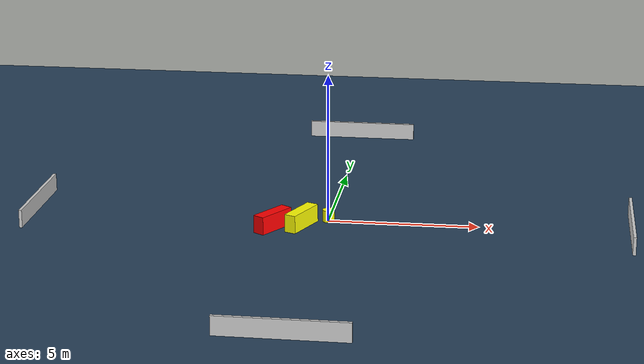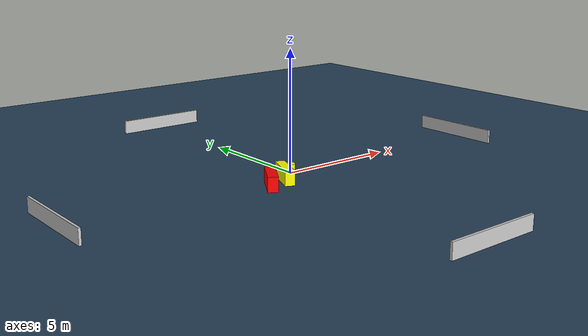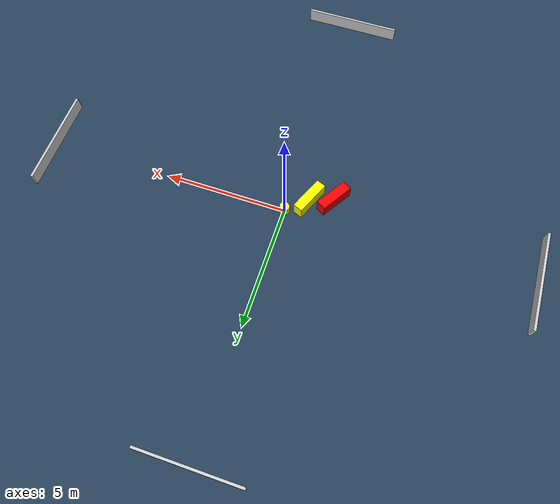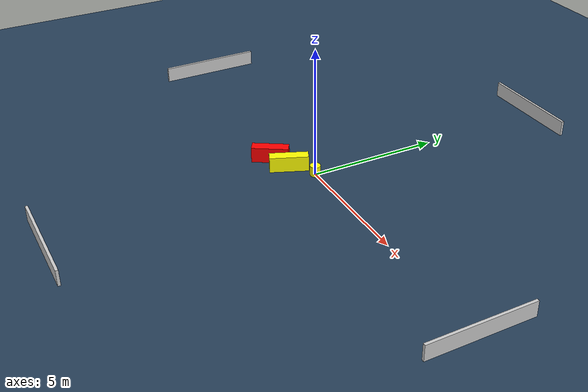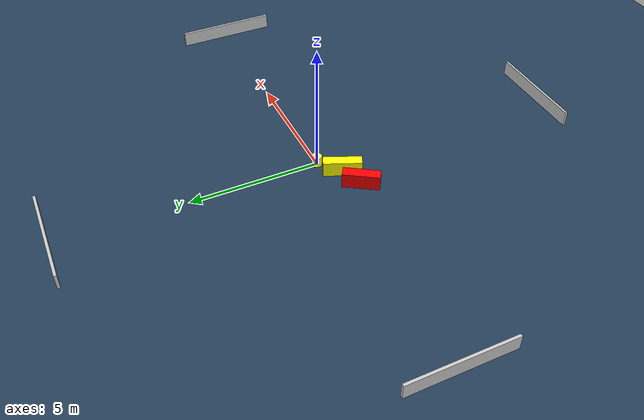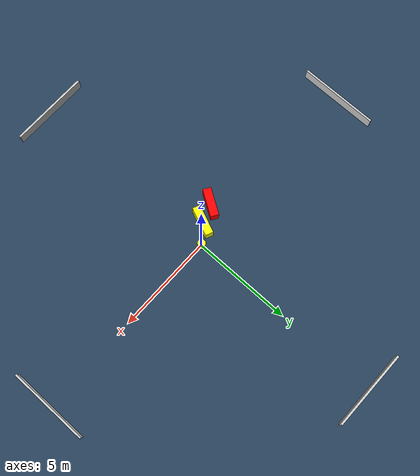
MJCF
<?xml version="1.0" ?>
<mujoco model="generated_environment">
  <option timestep="0.01" integrator="RK4" cone="elliptic"/>
  <default>
    <geom density="1"/>
  </default>
  <asset>
    <texture builtin="gradient" height="3072" name="skybox" rgb1="0.3 0.5 0.7" rgb2="0 0 0" type="skybox" width="512"/>
    <texture builtin="checker" height="300" name="groundplane" rgb1="0.2 0.3 0.4" rgb2="0.1 0.2 0.3" type="2d" width="300"/>
    <material name="groundplane" reflectance="0.2" texrepeat="5 5" texture="groundplane"/>
  </asset>
  <worldbody>
    <light dir="0 0 -1" directional="true" pos="0 0 1.5"/>
    <geom condim="3" friction="0.5 0.005 0.001" material="groundplane" name="floor" pos="0 0 0" size="0 0 0.05" type="plane"/>
    <body name="walls">
      <geom name="wall_1" condim="4" pos="-10.0 0.0 0.3" rgba="0.800000011920929 0.800000011920929 0.800000011920929 1.0" size="0.05 2.0 0.3" type="box"/>
      <geom name="wall_2" condim="4" pos="10.0 0.0 0.3" rgba="0.800000011920929 0.800000011920929 0.800000011920929 1.0" size="0.05 2.0 0.3" type="box"/>
      <geom name="wall_3" condim="4" pos="0.0 -10.0 0.3" rgba="0.800000011920929 0.800000011920929 0.800000011920929 1.0" size="2.0 0.05 0.3" type="box"/>
      <geom name="wall_4" condim="4" pos="0.0 10.0 0.3" rgba="0.800000011920929 0.800000011920929 0.800000011920929 1.0" size="2.0 0.05 0.3" type="box"/>
    </body>
    <body name="robot">
      <joint name="joint_x" type="slide" pos="0 0 0" axis="1 0 0"/>
      <joint name="joint_y" type="slide" pos="0 0 0" axis="0 1 0"/>
      <geom name="robot" type="cylinder" pos="0.0 0.0 0.2" size="0.2 0.2 0.0" mass="5.0" friction="1.0 0.005 0.0001" condim="4" rgba="1.0 1.0 0.0 1.0"/>
    </body>
    <body name="obstacle_1_movable">
      <geom name="obstacle_1_movable" condim="4" pos="-0.8190349168676356 -0.6695652676346474 0.3" euler="0 0 157.02632495117382" friction="0.0 0.005 0.001" rgba="1.0 1.0 0.0 1.0" size="0.20006957764254607 0.7297759801166961 0.3" type="box" mass="0.1"/>
      <joint type="free"/>
    </body>
    <body name="obstacle_2_static">
      <geom name="obstacle_2_static" condim="4" pos="-1.7308548562816657 -0.9914977956343073 0.3" euler="0 0 147.73655750441745" friction="0.0 0.005 0.001" rgba="1.0 0.0 0.0 1.0" size="0.20553144420264288 0.7006440475901876 0.3" type="box"/>
    </body>
  </worldbody>
  <actuator>
    <motor name="actuator_x" joint="joint_x" gear="1" ctrlrange="-1 1"/>
    <motor name="actuator_y" joint="joint_y" gear="1" ctrlrange="-1 1"/>
  </actuator>
</mujoco>
